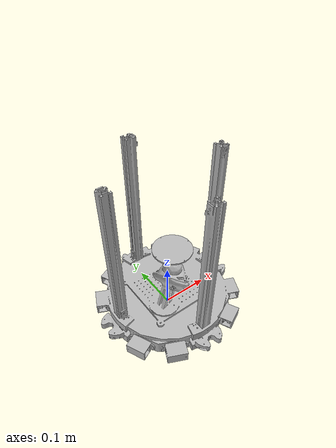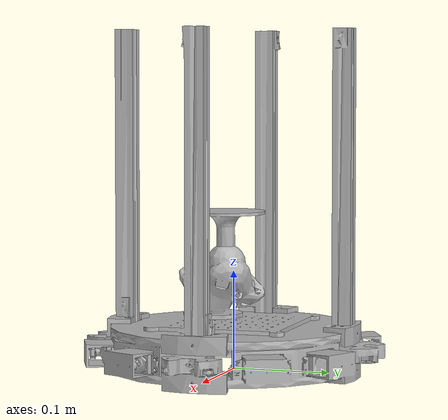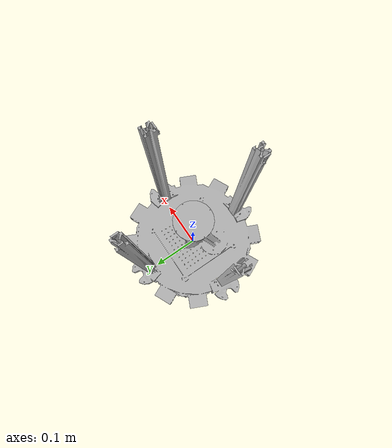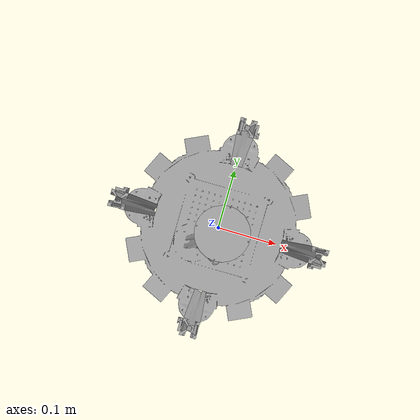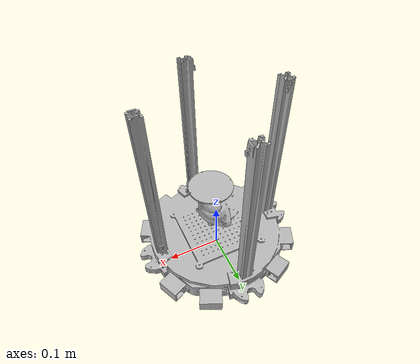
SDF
<sdf version="1.6">
	<model name="msj_platform">
		<link name="base">
			<self_collide>false</self_collide>
			<kinematic>true</kinematic>
			<pose frame="">0.0 0.0 0.0 0.0 -0.0 0.0</pose>
			<inertial>
				<pose frame="">0.0 0.0 0.0 0 0 0</pose>
				<mass>4.7878299078281294</mass>
				<inertia>
					<ixx>0.05972535129798961</ixx>
					<ixy>-0.00012363610327145556</ixy>
					<ixz>0.00036205602174036784</ixz>
					<iyy>0.0597092739824584</iyy>
					<iyz>0.00013650635541912796</iyz>
					<izz>0.06052438458508023</izz>
				</inertia>
			</inertial>
			<collision name="base_collision">
				<geometry>
					<mesh>
						<uri>model://msj_platform/meshes/collisions/base.dae</uri>
						<scale>0.001 0.001 0.001</scale>
					</mesh>
				</geometry>
			</collision>
			<visual name="base_visual">
				<geometry>
					<mesh>
						<uri>model://msj_platform/meshes/visuals/base.dae</uri>
						<scale>0.001 0.001 0.001</scale>
					</mesh>
				</geometry>
			</visual>
		</link>
		<link name="top">
			<self_collide>false</self_collide>
			<pose frame="">0.007571428571428571 -0.006 0.1615714285714286 0.0 -0.0 0.0</pose>
			<inertial>
				<pose frame="">0.0 0.0 0.0 0 0 0</pose>
				<mass>0.23742047095738525</mass>
				<inertia>
					<ixx>0.005494864784193527</ixx>
					<ixy>1.0785733720890608e-05</ixy>
					<ixz>0.00021464915445619628</ixz>
					<iyy>0.005499927976165427</iyy>
					<iyz>-0.00027086653561933006</iyz>
					<izz>0.00012507297242491172</izz>
				</inertia>
			</inertial>
			<collision name="top_collision">
				<geometry>
					<mesh>
						<uri>model://msj_platform/meshes/collisions/top.dae</uri>
						<scale>0.001 0.001 0.001</scale>
					</mesh>
				</geometry>
			</collision>
			<visual name="top_visual">
				<geometry>
					<mesh>
						<uri>model://msj_platform/meshes/visuals/top.dae</uri>
						<scale>0.001 0.001 0.001</scale>
					</mesh>
				</geometry>
			</visual>
		</link>
		<link name="sphere_link1">
			<self_collide>false</self_collide>
			<pose frame="">0.007571428571428578 -0.0059999999999999975 0.10800000000000003 0.0 -0.0 0.0</pose>
			<inertial>
				<pose frame="">0.0 0.0 0.0 0 0 0</pose>
				<mass>0.06979038134801685</mass>
				<inertia>
					<ixx>0.000828194739444481</ixx>
					<ixy>3.1704773240956278e-06</ixy>
					<ixz>4.52241671135149e-05</ixz>
					<iyy>0.0008296831261487397</iyy>
					<iyz>-5.706859183372124e-05</iyz>
					<izz>1.81605718339997e-05</izz>
				</inertia>
			</inertial>
			<collision name="sphere_link1_collision">
				<geometry>
					<mesh>
						<uri>model://msj_platform/meshes/collisions/sphere_link1.dae</uri>
						<scale>0.001 0.001 0.001</scale>
					</mesh>
				</geometry>
			</collision>
			<visual name="sphere_link1_visual">
				<geometry>
					<mesh>
						<uri>model://msj_platform/meshes/visuals/sphere_link1.dae</uri>
						<scale>0.001 0.001 0.001</scale>
					</mesh>
				</geometry>
			</visual>
		</link>
		<link name="sphere_link2">
			<self_collide>false</self_collide>
			<pose frame="">0.007571428571428586 -0.006000000062483437 0.10799999990919075 0.0 -0.0 0.0</pose>
			<inertial>
				<pose frame="">0.0 0.0 0.0 0 0 0</pose>
				<mass>0.04678255760927329</mass>
				<inertia>
					<ixx>0.0005526173565767919</ixx>
					<ixy>2.1252647820964382e-06</ixy>
					<ixz>3.03150976586011e-05</ixz>
					<iyy>0.0005536150662576664</iyy>
					<iyz>-3.825476564718879e-05</iyz>
					<izz>9.627487289655988e-06</izz>
				</inertia>
			</inertial>
			<collision name="sphere_link2_collision">
				<geometry>
					<mesh>
						<uri>model://msj_platform/meshes/collisions/sphere_link2.dae</uri>
						<scale>0.001 0.001 0.001</scale>
					</mesh>
				</geometry>
			</collision>
			<visual name="sphere_link2_visual">
				<geometry>
					<mesh>
						<uri>model://msj_platform/meshes/visuals/sphere_link2.dae</uri>
						<scale>0.001 0.001 0.001</scale>
					</mesh>
				</geometry>
			</visual>
		</link>
		<joint name="sphere_axis0" type="revolute">
			<parent>base</parent>
			<child>sphere_link1</child>
			<pose frame="">-5.551115123125783e-18 -3.3306690738754695e-18 -1.7763568394002505e-17 0 0 0</pose>
			<axis>
				<xyz>1 0 0</xyz>
				<limit>
					<lower>-3.141592653589793</lower>
					<upper>3.141592653589793</upper>
				</limit>
				<use_parent_model_frame>0</use_parent_model_frame>
			</axis>
		</joint>
		<joint name="sphere_axis1" type="revolute">
			<parent>sphere_link1</parent>
			<child>sphere_link2</child>
			<pose frame="">-1.3322676295501878e-17 6.248343620285368e-11 9.080926233195896e-11 0 0 0</pose>
			<axis>
				<xyz>0 1 0</xyz>
				<limit>
					<lower>-3.141592653589793</lower>
					<upper>3.141592653589793</upper>
				</limit>
				<use_parent_model_frame>0</use_parent_model_frame>
			</axis>
		</joint>
		<joint name="sphere_axis2" type="revolute">
			<parent>sphere_link2</parent>
			<child>top</child>
			<pose frame="">8.881784197001253e-18 -1.1102230246251566e-18 -0.053571428571428575 0 0 0</pose>
			<axis>
				<xyz>0 0 1</xyz>
				<limit>
					<lower>-3.141592653589793</lower>
					<upper>3.141592653589793</upper>
				</limit>
				<use_parent_model_frame>0</use_parent_model_frame>
			</axis>
		</joint>

		<plugin filename="libcardsflow_gazebo_plugin.so" name="cardsflow_gazebo_plugin">

		</plugin>
	</model>
</sdf>
